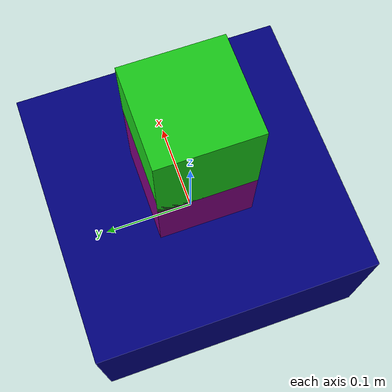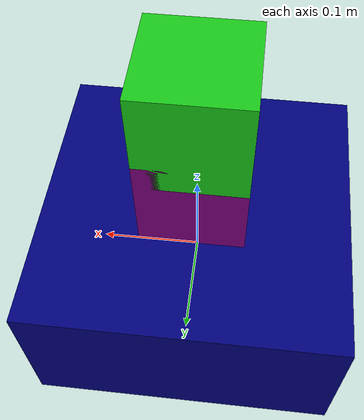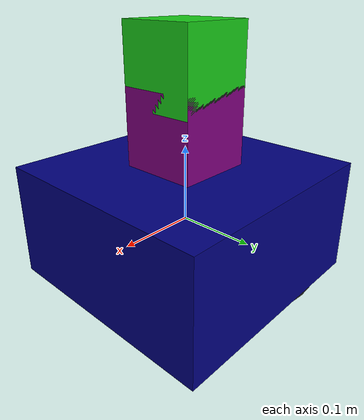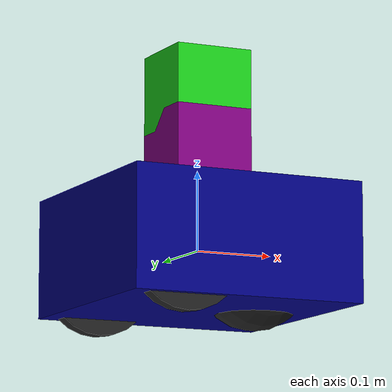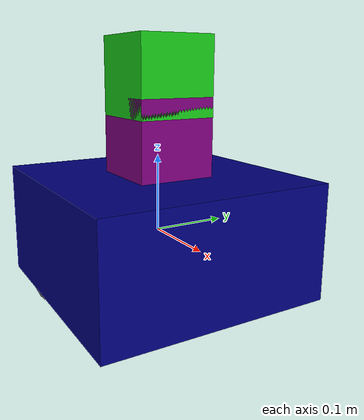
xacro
<?xml version="1.0"?>
<robot name="gobbit"
       xmlns:sensor="http://playerstage.sourceforge.net/gazebo/xmlschema/#sensor"
       xmlns:controller="http://playerstage.sourceforge.net/gazebo/xmlschema/#controller"
       xmlns:interface="http://playerstage.sourceforge.net/gazebo/xmlschema/#interface"
       xmlns:xacro="http://ros.org/wiki/xacro">

  <xacro:property name="wheel_length" value="0.02" />
  <xacro:property name="wheel_radius" value="0.0725" />
  <xacro:property name="body_length" value="0.3" />
  <xacro:property name="body_width" value="0.3" />
  <xacro:property name="body_height" value="0.15" />
  <xacro:property name="laser_size" value="0.1" />
  <xacro:property name="wheel_x" value="-${body_length / 2 - wheel_radius}" />
  <xacro:property name="wheel_y" value="-${body_width / 2 - wheel_length}" />
  <xacro:property name="wheel_inertia" value="0.01" />

  <link name="base_link">
    <visual>
      <geometry>
        <box size="${body_length} ${body_width} ${body_height}"/>
      </geometry>
      <material name="blue">
	      <color rgba="0.0 0.0 0.5 1"/>
      </material>
    </visual>
    <inertial>
      <mass value="5"/>
      <inertia ixx="0.01" iyy="0.01" izz="0.01"
               ixy="0" ixz="0" iyz="0"/>
    </inertial>
  </link>

  <joint name="laser_joint" type="fixed">
    <axis xyz="0 0 0"/>
    <parent link="base_link"/>
    <child link="laser"/>
    <origin rpy="0 0 0" xyz="0 0 ${body_height / 2 + laser_size / 2}"/>
  </joint>

  <link name="laser">
    <visual>
      <geometry>
        <box size="${laser_size} ${laser_size} ${laser_size}"/>
      </geometry>
      <material name="purple">
	      <color rgba="0.5 0.0 0.5 1"/>
	    </material>
    </visual>
  </link>

  <joint name="imu_joint" type="fixed">
    <axis xyz="0 0 0"/>
    <parent link="base_link"/>
    <child link="pocketbot"/>
    <origin rpy="0 0 0.0" xyz="0 0 ${laser_size * 2}"/>
  </joint>

  <link name="pocketbot">
    <visual>
      <geometry>
        <box size="${laser_size} ${laser_size} ${laser_size}"/>
      </geometry>
      <material name="green">
	      <color rgba="0.1 0.8 0.1 1"/>
	    </material>
    </visual>
    <inertial>
      <mass value="0.01"/>
      <inertia ixx="0.001" iyy="0.001" izz="0.001"
               ixy="0" ixz="0" iyz="0"/>
    </inertial>
  </link>

  <joint name="camera_joint" type="fixed">
    <axis xyz="0 0 0"/>
    <parent link="base_link"/>
    <child link="camera_link"/>
    <origin rpy="0 0 0.0" xyz="0 0 ${laser_size * 2}"/>
  </joint>

  <link name="camera_link">
    <visual>
      <geometry>
        <box size="${laser_size} ${laser_size} ${laser_size}"/>
      </geometry>
      <material name="green">
	      <color rgba="0.1 0.8 0.1 1"/>
	    </material>
    </visual>
    <inertial>
      <mass value="0.01"/>
      <inertia ixx="0.001" iyy="0.001" izz="0.001"
               ixy="0" ixz="0" iyz="0"/>
    </inertial>
  </link>

  <link name="wheel_right">
      <visual>
        <geometry>
          <cylinder length="${wheel_length}" radius="${wheel_radius}"/>
        </geometry>
        <material name="black"/>
      </visual>
      <collision>
        <geometry>
          <cylinder length="${wheel_length}" radius="${wheel_radius}"/>
        </geometry>
      </collision>
      <inertial>
        <mass value="0.01"/>
        <inertia ixx="${wheel_inertia}" iyy="${wheel_inertia}" izz="${wheel_inertia}"
                 ixy="0" ixz="0" iyz="0"/>
      </inertial>
    </link>

    <joint name="axis_right" type="continuous">
      <axis xyz="0 0 1"/>
      <parent link="base_link"/>
      <child link="wheel_right"/>
      <origin rpy="-1.5708 0 0" xyz="${wheel_x} ${-wheel_y} -${body_height / 2 - wheel_radius + wheel_length}"/>
    </joint>

    <link name="wheel_left">
      <visual>
        <geometry>
          <cylinder length="${wheel_length}" radius="${wheel_radius}"/>
        </geometry>
        <material name="black"/>
      </visual>
      <collision>
        <geometry>
          <cylinder length="${wheel_length}" radius="${wheel_radius}"/>
        </geometry>
      </collision>
      <inertial>
        <mass value="0.01"/>
        <inertia ixx="${wheel_inertia}" iyy="${wheel_inertia}" izz="${wheel_inertia}"
                 ixy="0" ixz="0" iyz="0"/>
      </inertial>
      <gazebo reference="wheel_left">
        <material>Gazebo/Black</material>
      </gazebo>
    </link>

    <joint name="axis_left" type="continuous">
      <axis xyz="0 0 1"/>
      <parent link="base_link"/>
      <child link="wheel_left"/>
      <origin rpy="-1.5708 0 0" xyz="${wheel_x} ${wheel_y} -${body_height / 2 - wheel_radius + wheel_length}"/>
    </joint>

    <link name="caster">
      <visual>
        <geometry>
          <sphere radius="${wheel_radius}"/>
        </geometry>
        <material name="black"/>
      </visual>
      <collision>
        <geometry>
          <sphere radius="${wheel_radius}"/>
        </geometry>
        <surface>
          <friction>
            <ode>
              <mu>0.0</mu>
              <mu2>0.0</mu2>
            </ode>
          </friction>
        </surface>
      </collision>
      <inertial>
        <mass value="0.01"/>
        <inertia ixx="${wheel_inertia}" iyy="${wheel_inertia}" izz="${wheel_inertia}"
                 ixy="0" ixz="0" iyz="0"/>
      </inertial>
    </link>

    <joint name="axis_caster" type="continuous">
      <axis xyz="0 0 1"/>
      <parent link="base_link"/>
      <child link="caster"/>
      <origin rpy="-1.57079632679 0 0" xyz="${-1 * wheel_x} 0 -${body_height / 2 - wheel_radius + wheel_length}"/>
    </joint>

<!-- Gazebo Drivers -->

  <gazebo reference="laser">
    <material>Gazebo/Blue</material>
    <sensor type="ray" name="laser_sensor">
      <pose>0 0 0 0 0 0</pose>
      <visualize>true</visualize>
      <update_rate>40</update_rate>
      <ray>
        <scan>
          <horizontal>
            <samples>720</samples>
            <resolution>1</resolution>
            <min_angle>-2.35619</min_angle>
            <max_angle>2.35619</max_angle>
          </horizontal>
        </scan>
        <range>
          <min>0.05</min>
          <max>30.0</max>
          <resolution>0.01</resolution>
        </range>
        <noise>
          <type>gaussian</type>
          <mean>0.0</mean>
          <stddev>0.01</stddev>
        </noise>
      </ray>
      <plugin name="gazebo_ros_head_hokuyo_controller" filename="libgazebo_ros_laser.so">
        <topicName>/scan</topicName>
        <frameName>laser</frameName>
      </plugin>
    </sensor>
  </gazebo>

  <gazebo>
    <plugin name="differential_drive_controller" filename="libgazebo_ros_diff_drive.so">
      <alwaysOn>true</alwaysOn>
      <updateRate>20</updateRate>
      <leftJoint>axis_left</leftJoint>
      <rightJoint>axis_right</rightJoint>
      <wheelSeparation>0.254</wheelSeparation>
      <wheelDiameter>0.1524</wheelDiameter>
      <torque>100</torque>
      <commandTopic>cmd_vel</commandTopic>
      <odometryTopic>odom</odometryTopic>
      <odometryFrame>odom</odometryFrame>
      <robotBaseFrame>base_link</robotBaseFrame>
      <publishTf>1</publishTf>
    </plugin>
  </gazebo>

  <gazebo>
    <plugin name="imu_plugin" filename="libgazebo_ros_imu.so">
      <alwaysOn>true</alwaysOn>
      <bodyName>pocketbot</bodyName>
      <topicName>imu</topicName>
      <serviceName>imu_service</serviceName>
      <gaussianNoise>0.0</gaussianNoise>
      <updateRate>20.0</updateRate>
    </plugin>
  </gazebo>

</robot>
